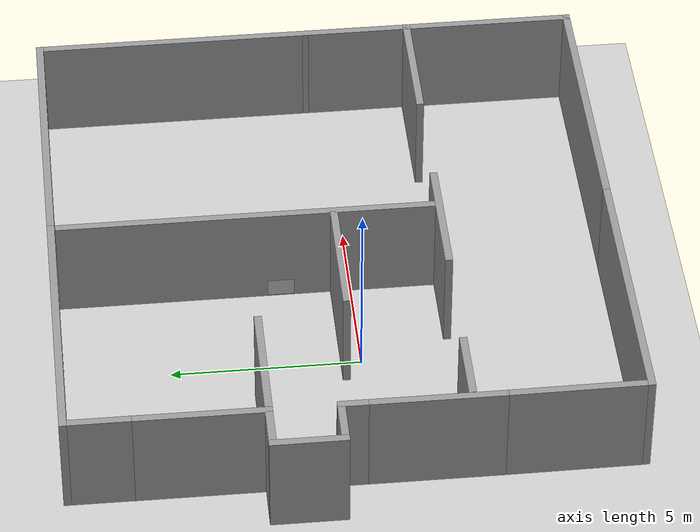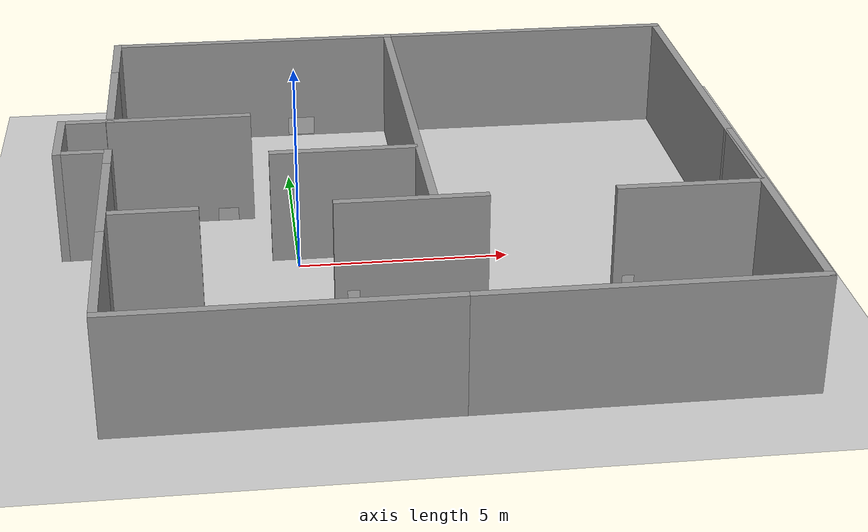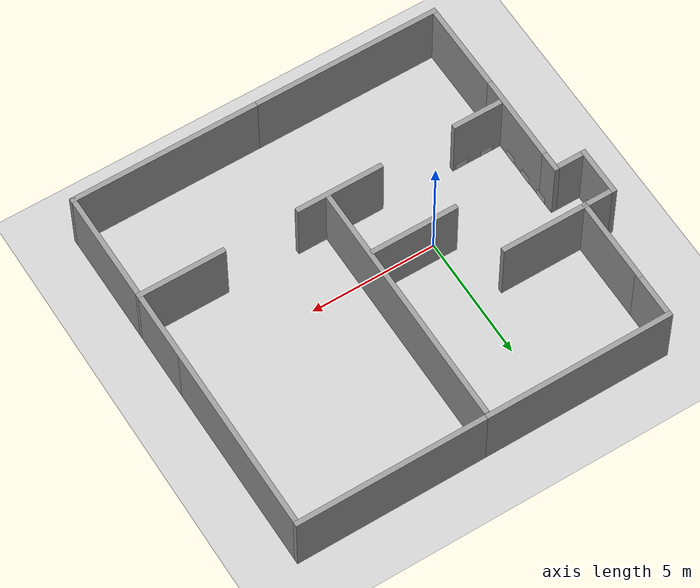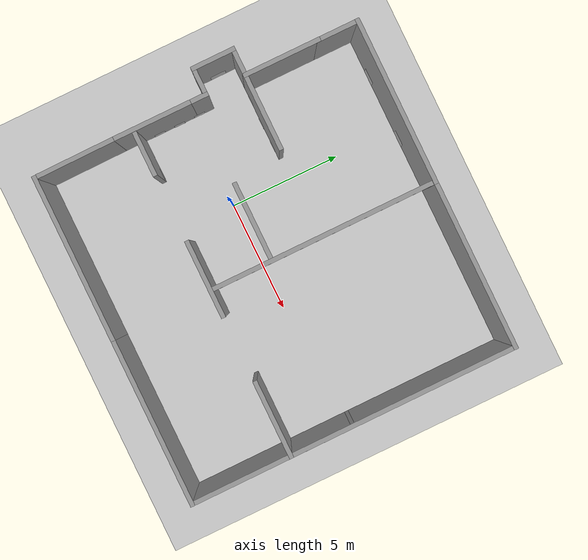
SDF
<sdf version="1.7">
 <world name="default">
  <light name="sun" type="directional">
   <pose>0 0 10 0 -0 0</pose>
   <diffuse>0.8 0.8 0.8 1</diffuse>
   <specular>0.2 0.2 0.2 1</specular>
   <attenuation>
    <range>1000</range>
    <constant>0.9</constant>
    <linear>0.01</linear>
    <quadratic>0.001</quadratic>
   </attenuation>
   <direction>-0.5 0.1 -0.9</direction>
   <spot><inner_angle>0</inner_angle><outer_angle>0</outer_angle><falloff>0</falloff></spot>
  </light>
  <model name="ground_plane">
   <static>1</static>
   <link name="link">
    <collision name="collision">
     <geometry><plane><normal>0 0 1</normal><size>100 100</size></plane></geometry>
     <surface>
      <contact><collide_bitmask>65535</collide_bitmask></contact>
      <friction><ode><mu>100</mu><mu2>50</mu2></ode></friction>
     </surface>
    </collision>
    <visual name="visual">
     <cast_shadows>0</cast_shadows>
     <geometry><plane><normal>0 0 1</normal><size>100 100</size></plane></geometry>
     <material>
      <script><uri>file://media/materials/scripts/gazebo.material</uri><name>Gazebo/Grey</name></script>
     </material>
    </visual>
   </link>
  </model>
  <gravity>0 0 -9.8</gravity>
  <magnetic_field>6e-06 2.3e-05 -4.2e-05</magnetic_field>
  <atmosphere type="adiabatic"/>
  <physics type="ode">
   <real_time_update_rate>1000</real_time_update_rate>
   <max_step_size>0.001</max_step_size>
   <real_time_factor>1</real_time_factor>
   <ode>
    <solver>
     <type>quick</type>
     <iters>150</iters>
     <precon_iters>0</precon_iters>
     <sor>1.4</sor>
     <use_dynamic_moi_rescaling>1</use_dynamic_moi_rescaling>
    </solver>
    <constraints>
     <cfm>1e-05</cfm>
     <erp>0.2</erp>
     <contact_max_correcting_vel>2000</contact_max_correcting_vel>
     <contact_surface_layer>0.01</contact_surface_layer>
    </constraints>
   </ode>
  </physics>
  <scene><ambient>0.4 0.4 0.4 1</ambient><background>0.7 0.7 0.7 1</background><shadows>1</shadows></scene>
  <audio><device>default</device></audio>
  <spherical_coordinates>
   <surface_model>EARTH_WGS84</surface_model>
   <latitude_deg>0</latitude_deg>
   <longitude_deg>0</longitude_deg>
   <elevation>0</elevation>
   <heading_deg>0</heading_deg>
  </spherical_coordinates>
  <model name="grey_wall_small">
   <static>1</static>
   <link name="link">
    <pose>0 0 1.4 0 -0 0</pose>
    <collision name="collision"><geometry><box><size>7.5 0.2 2.8</size></box></geometry></collision>
    <visual name="visual">
     <cast_shadows>0</cast_shadows>
     <geometry><box><size>7.5 0.2 2.8</size></box></geometry>
     <material>
      <script>
       <uri>model://grey_wall_small/materials/scripts</uri>
       <uri>model://grey_wall_small/materials/textures</uri>
       <name>vrc/grey_wall_small</name>
      </script>
     </material>
    </visual>
   </link>
   <pose>-0.724456 7.88128 0 0 -0 0</pose>
  </model>
  <model name="grey_wall_small_clone">
   <static>1</static>
   <link name="link">
    <pose>0 0 1.4 0 -0 0</pose>
    <collision name="collision"><geometry><box><size>7.5 0.2 2.8</size></box></geometry></collision>
    <visual name="visual">
     <cast_shadows>0</cast_shadows>
     <geometry><box><size>7.5 0.2 2.8</size></box></geometry>
     <material>
      <script>
       <uri>model://grey_wall_small/materials/scripts</uri>
       <uri>model://grey_wall_small/materials/textures</uri>
       <name>vrc/grey_wall_small</name>
      </script>
     </material>
    </visual>
   </link>
   <pose>6.77422 7.88164 0 0 -0 0</pose>
  </model>
  <model name="grey_wall_medium">
   <static>1</static>
   <link name="link">
    <pose>0 0 1.4 0 -0 0</pose>
    <collision name="collision"><geometry><box><size>10 0.2 2.8</size></box></geometry></collision>
    <visual name="visual">
     <cast_shadows>0</cast_shadows>
     <geometry><box><size>10 0.2 2.8</size></box></geometry>
     <material>
      <script>
       <uri>model://grey_wall_medium/materials/scripts</uri>
       <uri>model://grey_wall_medium/materials/textures</uri>
       <name>vrc/grey_wall_medium</name>
      </script>
     </material>
    </visual>
   </link>
   <pose>10.434 2.78025 0 0 0 -1.56842</pose>
  </model>
  <model name="grey_wall_medium_0">
   <static>1</static>
   <link name="link">
    <pose>0 0 1.4 0 -0 0</pose>
    <collision name="collision"><geometry><box><size>10 0.2 2.8</size></box></geometry></collision>
    <visual name="visual">
     <cast_shadows>0</cast_shadows>
     <geometry><box><size>10 0.2 2.8</size></box></geometry>
     <material>
      <script>
       <uri>model://grey_wall_medium/materials/scripts</uri>
       <uri>model://grey_wall_medium/materials/textures</uri>
       <name>vrc/grey_wall_medium</name>
      </script>
     </material>
    </visual>
   </link>
   <pose>2.92051 2.76613 0 0 0 -1.56961</pose>
  </model>
  <model name="grey_wall_smaller_0">
   <static>1</static>
   <link name="link">
    <pose>0 0 1.4 0 -0 0</pose>
    <collision name="collision"><geometry><box><size>3.5 0.2 2.8</size></box></geometry></collision>
    <visual name="visual">
     <cast_shadows>0</cast_shadows>
     <geometry><box><size>3.5 0.2 2.8</size></box></geometry>
     <material>
      <script>
       <uri>model://grey_wall_smaller/materials/scripts</uri>
       <uri>model://grey_wall_smaller/materials/textures</uri>
       <name>vrc/grey_wall_smaller</name>
      </script>
     </material>
    </visual>
   </link>
   <pose>2.42415 -2.33372 0 0 -0 0</pose>
  </model>
  <model name="grey_wall_smaller_1">
   <static>1</static>
   <link name="link">
    <pose>0 0 1.4 0 -0 0</pose>
    <collision name="collision"><geometry><box><size>3.5 0.2 2.8</size></box></geometry></collision>
    <visual name="visual">
     <cast_shadows>0</cast_shadows>
     <geometry><box><size>3.5 0.2 2.8</size></box></geometry>
     <material>
      <script>
       <uri>model://grey_wall_smaller/materials/scripts</uri>
       <uri>model://grey_wall_smaller/materials/textures</uri>
       <name>vrc/grey_wall_smaller</name>
      </script>
     </material>
    </visual>
   </link>
   <pose>8.79723 -2.31848 0 0 -0 0</pose>
  </model>
  <model name="grey_wall_smaller_2">
   <static>1</static>
   <link name="link">
    <pose>0 0 1.4 0 -0 0</pose>
    <collision name="collision"><geometry><box><size>3.5 0.2 2.8</size></box></geometry></collision>
    <visual name="visual">
     <cast_shadows>0</cast_shadows>
     <geometry><box><size>3.5 0.2 2.8</size></box></geometry>
     <material>
      <script>
       <uri>model://grey_wall_smaller/materials/scripts</uri>
       <uri>model://grey_wall_smaller/materials/textures</uri>
       <name>vrc/grey_wall_smaller</name>
      </script>
     </material>
    </visual>
   </link>
   <pose>-4.36149 -1.46454 0 0 0 -1.57176</pose>
  </model>
  <model name="grey_wall_small_1">
   <static>1</static>
   <link name="link">
    <pose>0 0 1.4 0 -0 0</pose>
    <collision name="collision"><geometry><box><size>7.5 0.2 2.8</size></box></geometry></collision>
    <visual name="visual">
     <cast_shadows>0</cast_shadows>
     <geometry><box><size>7.5 0.2 2.8</size></box></geometry>
     <material>
      <script>
       <uri>model://grey_wall_small/materials/scripts</uri>
       <uri>model://grey_wall_small/materials/textures</uri>
       <name>vrc/grey_wall_small</name>
      </script>
     </material>
    </visual>
   </link>
   <pose>-0.682987 -6.80907 0 0 -0 0</pose>
  </model>
  <model name="grey_wall_smaller">
   <static>1</static>
   <link name="link">
    <pose>0 0 1.4 0 -0 0</pose>
    <collision name="collision"><geometry><box><size>3.5 0.2 2.8</size></box></geometry></collision>
    <visual name="visual">
     <cast_shadows>0</cast_shadows>
     <geometry><box><size>3.5 0.2 2.8</size></box></geometry>
     <material>
      <script>
       <uri>model://grey_wall_smaller/materials/scripts</uri>
       <uri>model://grey_wall_smaller/materials/textures</uri>
       <name>vrc/grey_wall_smaller</name>
      </script>
     </material>
    </visual>
   </link>
   <pose>-4.35036 -4.96157 0 0 -0 1.57757</pose>
  </model>
  <model name="grey_wall_small_2">
   <static>1</static>
   <link name="link">
    <pose>0 0 1.4 0 -0 0</pose>
    <collision name="collision"><geometry><box><size>7.5 0.2 2.8</size></box></geometry></collision>
    <visual name="visual">
     <cast_shadows>0</cast_shadows>
     <geometry><box><size>7.5 0.2 2.8</size></box></geometry>
     <material>
      <script>
       <uri>model://grey_wall_small/materials/scripts</uri>
       <uri>model://grey_wall_small/materials/textures</uri>
       <name>vrc/grey_wall_small</name>
      </script>
     </material>
    </visual>
   </link>
   <pose>6.81082 -6.81042 0 0 -0 0</pose>
  </model>
  <model name="grey_wall_small_3">
   <static>1</static>
   <link name="link">
    <pose>0 0 1.4 0 -0 0</pose>
    <collision name="collision"><geometry><box><size>7.5 0.2 2.8</size></box></geometry></collision>
    <visual name="visual">
     <cast_shadows>0</cast_shadows>
     <geometry><box><size>7.5 0.2 2.8</size></box></geometry>
     <material>
      <script>
       <uri>model://grey_wall_small/materials/scripts</uri>
       <uri>model://grey_wall_small/materials/textures</uri>
       <name>vrc/grey_wall_small</name>
      </script>
     </material>
    </visual>
   </link>
   <pose>10.4493 -3.15028 0 0 -0 1.57351</pose>
  </model>
  <model name="grey_wall_tiny">
   <static>1</static>
   <link name="link">
    <pose>0 0 1.4 0 -0 0</pose>
    <collision name="collision"><geometry><box><size>2 0.2 2.8</size></box></geometry></collision>
    <visual name="visual">
     <cast_shadows>0</cast_shadows>
     <geometry><box><size>2 0.2 2.8</size></box></geometry>
     <material>
      <script>
       <uri>model://grey_wall_tiny/materials/scripts</uri>
       <uri>model://grey_wall_tiny/materials/textures</uri>
       <name>vrc/grey_wall_tiny</name>
      </script>
     </material>
    </visual>
   </link>
   <pose>-3.2561 -2.32762 0 0 -0 0</pose>
  </model>
  <model name="red_image">
   <static>1</static>
   <link name="link">
    <visual name="visual">
     <pose>-6 -0.11 0.4 1.57 -0 0</pose>
     <cast_shadows>0</cast_shadows>
     <geometry><plane><normal>0 0 1</normal><size>0.279 0.21</size></plane></geometry>
     <material>
      <script>
       <uri>model://red_image/materials/scripts</uri>
       <uri>model://red_image/materials/textures</uri>
       <name>red_image/Image</name>
      </script>
     </material>
    </visual>
   </link>
   <pose>13.4 -2.329 0.1 0 -0 0</pose>
  </model>
  <model name="green_image">
   <static>1</static>
   <link name="link">
    <visual name="visual">
     <pose>-6 -0.11 0.4 1.57 -0 0</pose>
     <cast_shadows>0</cast_shadows>
     <geometry><plane><normal>0 0 1</normal><size>0.279 0.21</size></plane></geometry>
     <material>
      <script>
       <uri>model://green_image/materials/scripts</uri>
       <uri>model://green_image/materials/textures</uri>
       <name>green_image/Image</name>
      </script>
     </material>
    </visual>
   </link>
   <pose>7.1 -2.32966 0.1 0 -0 0</pose>
  </model>
  <light name="user_point_light_0" type="point">
   <pose>3.79344 -5.28695 1 0 -0 0</pose>
   <diffuse>0.5 0.5 0.5 1</diffuse>
   <specular>0.1 0.1 0.1 1</specular>
   <attenuation>
    <range>20</range>
    <constant>0.5</constant>
    <linear>0.01</linear>
    <quadratic>0.001</quadratic>
   </attenuation>
   <cast_shadows>0</cast_shadows>
   <direction>0 0 -1</direction>
   <spot><inner_angle>0</inner_angle><outer_angle>0</outer_angle><falloff>0</falloff></spot>
  </light>
  <model name="window1">
   <static>1</static>
   <link name="robot_link">
    <collision name="body_collision">
     <geometry><plane><size>0.707 0.5</size><normal>0 0 1</normal></plane></geometry>
    </collision>
    <visual name="body_visual">
     <cast_shadows>0</cast_shadows>
     <geometry><plane><size>0.707 0.5</size><normal>0 0 1</normal></plane></geometry>
     <material>
      <script>
       <uri>model://window1/materials/scripts/</uri>
       <uri>model://window1/materials/textures/</uri>
       <name>RepeatedTexture1</name>
      </script>
     </material>
    </visual>
   </link>
   <pose>-5.44 1.87 0.28 1.57 -0 1.57</pose>
  </model>
  <model name="window2">
   <static>1</static>
   <link name="robot_link">
    <collision name="body_collision">
     <geometry><plane><size>0.707 0.5</size><normal>0 0 1</normal></plane></geometry>
    </collision>
    <visual name="body_visual">
     <cast_shadows>0</cast_shadows>
     <geometry><plane><size>0.707 0.5</size><normal>0 0 1</normal></plane></geometry>
     <material>
      <script>
       <uri>model://window2/materials/scripts/</uri>
       <uri>model://window2/materials/textures/</uri>
       <name>RepeatedTexture2</name>
      </script>
     </material>
    </visual>
   </link>
   <pose>0.5 7.771 0.28 1.57 -0 0</pose>
  </model>
  <model name="grey_wall_tiny_1">
   <static>1</static>
   <link name="link">
    <pose>0 0 1.4 0 -0 0</pose>
    <collision name="collision"><geometry><box><size>1 0.2 2.8</size></box></geometry></collision>
    <visual name="visual">
     <cast_shadows>0</cast_shadows>
     <geometry><box><size>1 0.2 2.8</size></box></geometry>
     <material>
      <script>
       <uri>model://grey_wall_tinier/materials/scripts</uri>
       <uri>model://grey_wall_tinier/materials/textures</uri>
       <name>vrc/grey_wall_tinier</name>
      </script>
     </material>
    </visual>
   </link>
   <pose>-4.94924 0.97838 0 0 -0 0</pose>
  </model>
  <model name="grey_wall_micro">
   <static>1</static>
   <link name="link">
    <pose>0 0 1.4 0 -0 0</pose>
    <collision name="collision"><geometry><box><size>0.8 0.2 2.8</size></box></geometry></collision>
    <visual name="visual">
     <cast_shadows>0</cast_shadows>
     <geometry><box><size>0.8 0.2 2.8</size></box></geometry>
     <material>
      <script>
       <uri>model://grey_wall_micro/materials/scripts</uri>
       <uri>model://grey_wall_micro/materials/textures</uri>
       <name>vrc/grey_wall_micro</name>
      </script>
     </material>
    </visual>
   </link>
   <pose>-4.35918 0.678338 0 0 -0 1.57</pose>
  </model>
  <model name="grey_wall_tiny_0">
   <static>1</static>
   <link name="link">
    <pose>0 0 1.4 0 -0 0</pose>
    <collision name="collision"><geometry><box><size>2 0.2 2.8</size></box></geometry></collision>
    <visual name="visual">
     <cast_shadows>0</cast_shadows>
     <geometry><box><size>2 0.2 2.8</size></box></geometry>
     <material>
      <script>
       <uri>model://grey_wall_tiny/materials/scripts</uri>
       <uri>model://grey_wall_tiny/materials/textures</uri>
       <name>vrc/grey_wall_tiny</name>
      </script>
     </material>
    </visual>
   </link>
   <pose>-5.54645 1.87819 0 0 0 -1.57</pose>
  </model>
  <model name="grey_wall_tiny_1_clone">
   <static>1</static>
   <link name="link">
    <pose>0 0 1.4 0 -0 0</pose>
    <collision name="collision"><geometry><box><size>1 0.2 2.8</size></box></geometry></collision>
    <visual name="visual">
     <cast_shadows>0</cast_shadows>
     <geometry><box><size>1 0.2 2.8</size></box></geometry>
     <material>
      <script>
       <uri>model://grey_wall_tinier/materials/scripts</uri>
       <uri>model://grey_wall_tinier/materials/textures</uri>
       <name>vrc/grey_wall_tinier</name>
      </script>
     </material>
    </visual>
   </link>
   <pose>-4.94907 2.77813 0 0 -0 0</pose>
  </model>
  <model name="grey_wall_smaller_3">
   <static>1</static>
   <link name="link">
    <pose>0 0 1.4 0 -0 0</pose>
    <collision name="collision"><geometry><box><size>3.5 0.2 2.8</size></box></geometry></collision>
    <visual name="visual">
     <cast_shadows>0</cast_shadows>
     <geometry><box><size>3.5 0.2 2.8</size></box></geometry>
     <material>
      <script>
       <uri>model://grey_wall_smaller/materials/scripts</uri>
       <uri>model://grey_wall_smaller/materials/textures</uri>
       <name>vrc/grey_wall_smaller</name>
      </script>
     </material>
    </visual>
   </link>
   <pose>-4.37941 4.42627 0 0 -0 1.57</pose>
  </model>
  <model name="grey_wall_tiny_2">
   <static>1</static>
   <link name="link">
    <pose>0 0 1.4 0 -0 0</pose>
    <collision name="collision"><geometry><box><size>2 0.2 2.8</size></box></geometry></collision>
    <visual name="visual">
     <cast_shadows>0</cast_shadows>
     <geometry><box><size>2 0.2 2.8</size></box></geometry>
     <material>
      <script>
       <uri>model://grey_wall_tiny/materials/scripts</uri>
       <uri>model://grey_wall_tiny/materials/textures</uri>
       <name>vrc/grey_wall_tiny</name>
      </script>
     </material>
    </visual>
   </link>
   <pose>-4.37463 6.98058 0 0 -0 1.57</pose>
  </model>
  <model name="poster">
   <static>1</static>
   <link name="robot_link">
    <collision name="body_collision">
     <geometry><plane><size>0.707 0.5</size><normal>0 0 1</normal></plane></geometry>
    </collision>
    <visual name="body_visual">
     <cast_shadows>0</cast_shadows>
     <geometry><plane><size>0.707 0.5</size><normal>0 0 1</normal></plane></geometry>
     <material>
      <script>
       <uri>model://poster/materials/scripts/</uri>
       <uri>model://poster/materials/textures/</uri>
       <name>RepeatedTexturePoster</name>
      </script>
     </material>
    </visual>
   </link>
   <pose>2.82 1.87 0.28 1.57 0 -1.57</pose>
  </model>
  <model name="window3">
   <static>1</static>
   <link name="robot_link">
    <collision name="body_collision">
     <geometry><plane><size>0.707 0.5</size><normal>0 0 1</normal></plane></geometry>
    </collision>
    <visual name="body_visual">
     <cast_shadows>0</cast_shadows>
     <geometry><plane><size>0.707 0.5</size><normal>0 0 1</normal></plane></geometry>
     <material>
      <script>
       <uri>model://window3/materials/scripts/</uri>
       <uri>model://window3/materials/textures/</uri>
       <name>RepeatedTexture3</name>
      </script>
     </material>
    </visual>
   </link>
   <pose>-2.5 7.771 0.28 1.57 -0 0</pose>
  </model>
  <model name="grey_wall_smaller_5">
   <static>1</static>
   <link name="link">
    <pose>0 0 1.4 0 -0 0</pose>
    <collision name="collision"><geometry><box><size>3.5 0.2 2.8</size></box></geometry></collision>
    <visual name="visual">
     <cast_shadows>0</cast_shadows>
     <geometry><box><size>3.5 0.2 2.8</size></box></geometry>
     <material>
      <script>
       <uri>model://grey_wall_smaller/materials/scripts</uri>
       <uri>model://grey_wall_smaller/materials/textures</uri>
       <name>vrc/grey_wall_smaller</name>
      </script>
     </material>
    </visual>
   </link>
   <pose>-2.72431 2.77541 0 0 -0 0</pose>
  </model>
  <model name="grey_wall_smaller_6">
   <static>1</static>
   <link name="link">
    <pose>0 0 1.4 0 -0 0</pose>
    <collision name="collision"><geometry><box><size>3.5 0.2 2.8</size></box></geometry></collision>
    <visual name="visual">
     <cast_shadows>0</cast_shadows>
     <geometry><box><size>3.5 0.2 2.8</size></box></geometry>
     <material>
      <script>
       <uri>model://grey_wall_smaller/materials/scripts</uri>
       <uri>model://grey_wall_smaller/materials/textures</uri>
       <name>vrc/grey_wall_smaller</name>
      </script>
     </material>
    </visual>
   </link>
   <pose>1.12921 0.452526 0 0 -0 0</pose>
  </model>
  <model name="Earth">
   <static>1</static>
   <link name="robot_link">
    <collision name="body_collision"><geometry><box><size>0.35 0.5 0.01</size></box></geometry></collision>
    <visual name="body_visual">
     <geometry><box><size>0.35 0.5 0.01</size></box></geometry>
     <material>
      <script>
       <uri>model://Earth/materials/scripts/</uri>
       <uri>model://Earth/materials/textures/</uri>
       <name>Earth</name>
      </script>
     </material>
    </visual>
   </link>
   <pose>-4.25837 -1.5579 0.173524 1.57489 -1.52597 1.58294</pose>
  </model>
  <model name="Jupyter">
   <static>1</static>
   <link name="robot_link">
    <collision name="body_collision"><geometry><box><size>0.35 0.5 0.01</size></box></geometry></collision>
    <visual name="body_visual">
     <geometry><box><size>0.35 0.5 0.01</size></box></geometry>
     <material>
      <script>
       <uri>model://Jupyter/materials/scripts/</uri>
       <uri>model://Jupyter/materials/textures/</uri>
       <name>Jupyter</name>
      </script>
     </material>
    </visual>
   </link>
   <pose>-4.25315 -0.598932 0.172295 -1.35972 -1.54834 -1.7978</pose>
  </model>
  <model name="MakeMake">
   <static>1</static>
   <link name="robot_link">
    <collision name="body_collision"><geometry><box><size>0.35 0.5 0.01</size></box></geometry></collision>
    <visual name="body_visual">
     <geometry><box><size>0.35 0.5 0.01</size></box></geometry>
     <material>
      <script>
       <uri>model://MakeMake/materials/scripts/</uri>
       <uri>model://MakeMake/materials/textures/</uri>
       <name>MakeMake</name>
      </script>
     </material>
    </visual>
   </link>
   <pose>-4.25873 0.373954 0.169286 3.13891 -1.54789 0</pose>
  </model>
  <model name="Mars">
   <static>1</static>
   <link name="robot_link">
    <collision name="body_collision"><geometry><box><size>0.35 0.5 0.01</size></box></geometry></collision>
    <visual name="body_visual">
     <geometry><box><size>0.35 0.5 0.01</size></box></geometry>
     <material>
      <script>
       <uri>model://Mars/materials/scripts/</uri>
       <uri>model://Mars/materials/textures/</uri>
       <name>Mars</name>
      </script>
     </material>
    </visual>
   </link>
   <pose>-2.6173 -2.22685 0.182059 1e-06 -1.5604 -1.56232</pose>
  </model>
  <model name="Mercury">
   <static>1</static>
   <link name="robot_link">
    <collision name="body_collision"><geometry><box><size>0.35 0.5 0.01</size></box></geometry></collision>
    <visual name="body_visual">
     <geometry><box><size>0.35 0.5 0.01</size></box></geometry>
     <material>
      <script>
       <uri>model://Mercury/materials/scripts/</uri>
       <uri>model://Mercury/materials/textures/</uri>
       <name>Mercury</name>
      </script>
     </material>
    </visual>
   </link>
   <pose>-3.65815 -2.21806 0.187017 -3.14159 -1.49266 1.58045</pose>
  </model>
  <model name="Moon">
   <static>1</static>
   <link name="robot_link">
    <collision name="body_collision"><geometry><box><size>0.35 0.5 0.01</size></box></geometry></collision>
    <visual name="body_visual">
     <geometry><box><size>0.35 0.5 0.01</size></box></geometry>
     <material>
      <script>
       <uri>model://Moon/materials/scripts/</uri>
       <uri>model://Moon/materials/textures/</uri>
       <name>Moon</name>
      </script>
     </material>
    </visual>
   </link>
   <pose>-3.8449 2.67164 0.175102 3.14159 -1.53121 -1.56822</pose>
  </model>
  <model name="Neptune">
   <static>1</static>
   <link name="robot_link">
    <collision name="body_collision"><geometry><box><size>0.35 0.5 0.01</size></box></geometry></collision>
    <visual name="body_visual">
     <geometry><box><size>0.35 0.5 0.01</size></box></geometry>
     <material>
      <script>
       <uri>model://Neptune/materials/scripts/</uri>
       <uri>model://Neptune/materials/textures/</uri>
       <name>Neptune</name>
      </script>
     </material>
    </visual>
   </link>
   <pose>-2.73059 2.65742 0.169803 2.75701 -1.53661 -1.1878</pose>
  </model>
  <model name="Pluto">
   <static>1</static>
   <link name="robot_link">
    <collision name="body_collision"><geometry><box><size>0.35 0.5 0.01</size></box></geometry></collision>
    <visual name="body_visual">
     <geometry><box><size>0.35 0.5 0.01</size></box></geometry>
     <material>
      <script>
       <uri>model://Pluto/materials/scripts/</uri>
       <uri>model://Pluto/materials/textures/</uri>
       <name>Pluto</name>
      </script>
     </material>
    </visual>
   </link>
   <pose>-1.61668 2.66575 0.173917 2.93392 -1.48668 -1.36218</pose>
  </model>
 </world>
</sdf>
